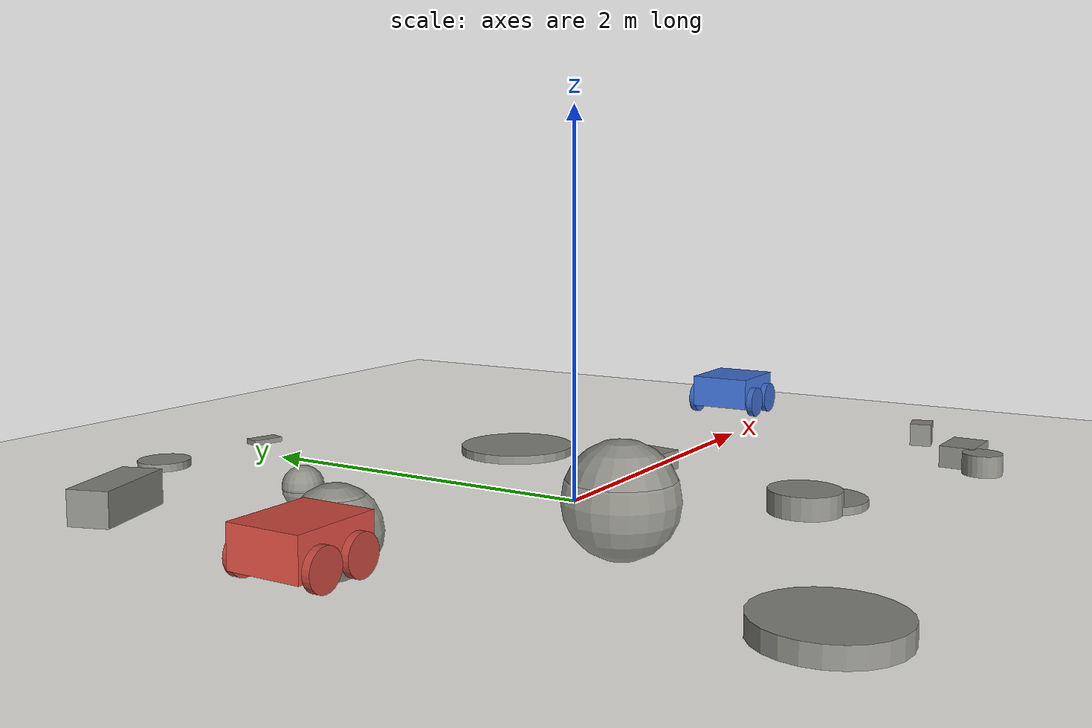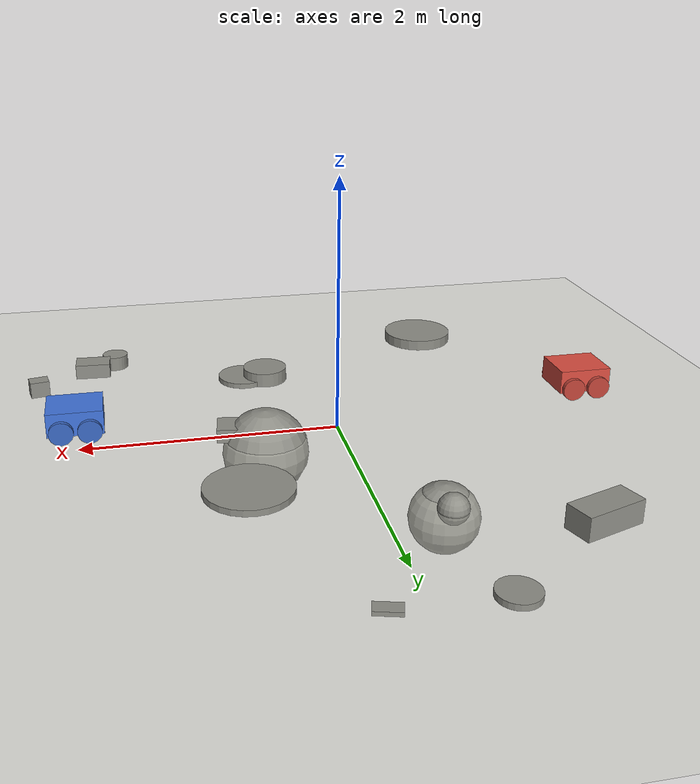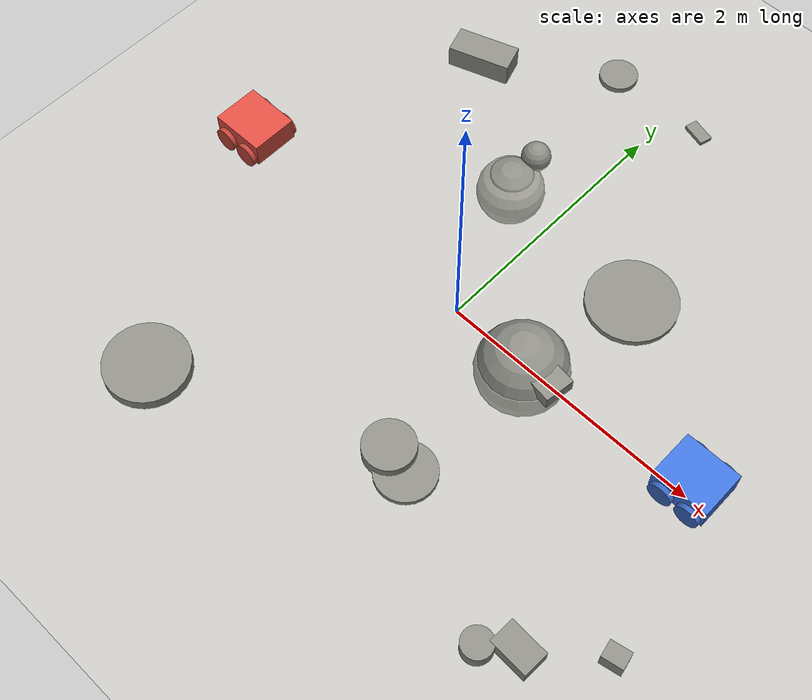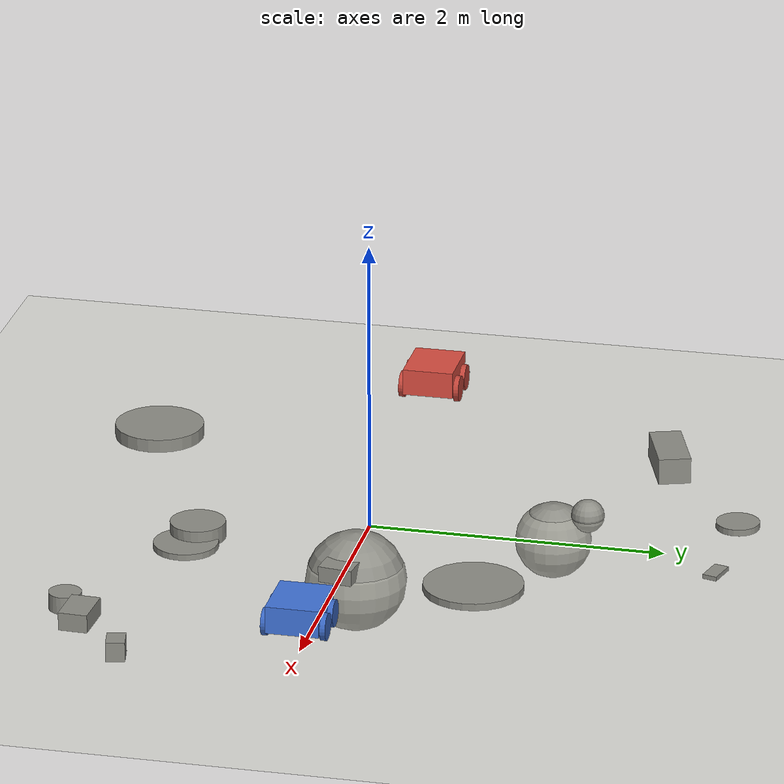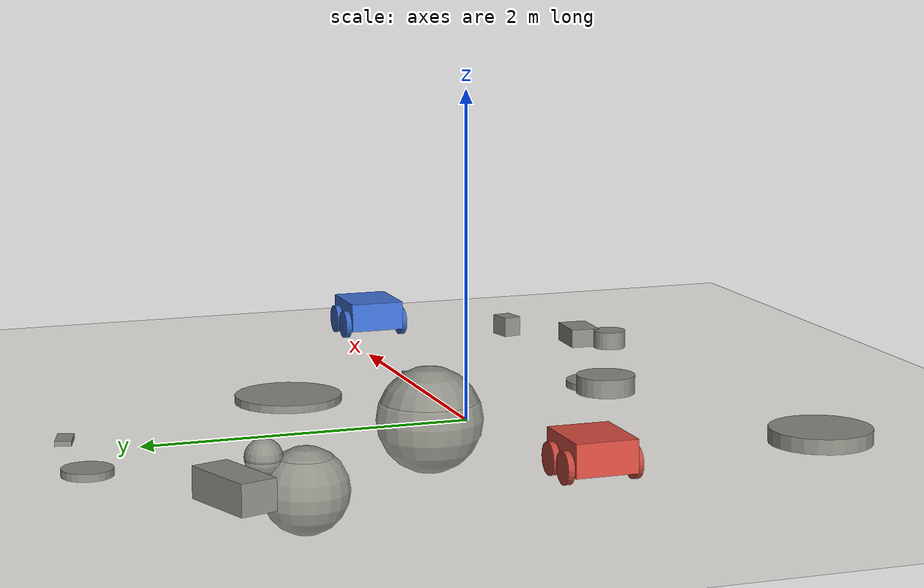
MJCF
<mujoco model="rabbitstew"><compiler angle="radian" autolimits="true" /><option timestep="0.005" gravity="0 0 -9.81" /><default><geom friction="1 0.005 0.0001" condim="3" solref="0.01 1" solimp="0.9 0.95 0.001" /><joint armature="0.005" /><motor ctrllimited="true" ctrlrange="-1 1" /></default><worldbody><geom name="floor" type="plane" size="0 0 1" rgba="0.85 0.85 0.8 1" /><light pos="0 0 4" dir="0 0 -1" diffuse="0.8 0.8 0.8" /><geom name="scenery0" pos="0.588138 -1.1156 0.0208862" quat="1 0 0 0" rgba="0.55 0.55 0.52 1" type="cylinder" size="0.218073 0.0208862" /><geom name="scenery1" pos="1.68602 -1.63908 0.0593242" quat="1 0 0 0" rgba="0.55 0.55 0.52 1" type="cylinder" size="0.109164 0.0593242" /><geom name="scenery2" pos="-1.19916 -1.76355 0.04495" quat="1 0 0 0" rgba="0.55 0.55 0.52 1" type="cylinder" size="0.306744 0.04495" /><geom name="scenery3" pos="2.33252 -1.12476 0.0663091" quat="0.995272 0 0 0.0971303" rgba="0.55 0.55 0.52 1" type="box" size="0.0780855 0.062265 0.0663091" /><geom name="scenery4" pos="-0.528399 2.4018 0.0219671" quat="1 0 0 0" rgba="0.55 0.55 0.52 1" type="cylinder" size="0.147247 0.0219671" /><geom name="scenery5" pos="-1.37742 1.78223 0.0903501" quat="0.986783 0 0 0.16205" rgba="0.55 0.55 0.52 1" type="box" size="0.24214 0.1102 0.0903501" /><geom name="scenery6" pos="-0.485057 1.38928 0.00450358" quat="1 0 0 0" rgba="0.55 0.55 0.52 1" type="sphere" size="0.113096" /><geom name="scenery7" pos="0.579411 0.0396035 -0.126374" quat="1 0 0 0" rgba="0.55 0.55 0.52 1" type="sphere" size="0.338738" /><geom name="scenery8" pos="1.88194 -1.49 0.0615057" quat="0.0204525 0 0 0.999791" rgba="0.55 0.55 0.52 1" type="box" size="0.146497 0.0972545 0.0615057" /><geom name="scenery9" pos="0.254495 2.38908 0.0151539" quat="0.13327 0 0 0.99108" rgba="0.55 0.55 0.52 1" type="box" size="0.0943341 0.0493801 0.0151539" /><geom name="scenery10" pos="0.405607 -1.07939 0.0582905" quat="1 0 0 0" rgba="0.55 0.55 0.52 1" type="cylinder" size="0.187037 0.0582905" /><geom name="scenery11" pos="-0.509484 1.15044 -0.204154" quat="1 0 0 0" rgba="0.55 0.55 0.52 1" type="sphere" size="0.258523" /><geom name="scenery12" pos="0.831178 0.886242 0.0241662" quat="1 0 0 0" rgba="0.55 0.55 0.52 1" type="cylinder" size="0.333017 0.0241662" /><geom name="scenery13" pos="0.811264 0.000437043 0.0544535" quat="0.0705477 0 0 0.997508" rgba="0.55 0.55 0.52 1" type="box" size="0.137848 0.11518 0.0544535" /><body name="r0_p0" pos="-2 2.44929e-16 0.29744" quat="1 -0 -0 -6.12323e-17"><freejoint name="r0_root" /><geom type="box" size="0.207951 0.175603 0.0924228" name="r0_g0" pos="0 0 0" mass="13.5" rgba="0.850 0.300 0.250 1" /><body name="r0_p1" pos="0.103976 0.175603 -0.0554537" quat="0.707107 0 0 0.707107"><joint name="r0_j1" type="hinge" axis="1 0 0" damping="2.7" /><geom type="cylinder" size="0.0900733 0.0180147" quat="0.707107 0 0.707107 0" name="r0_g1" pos="0.0180147 0 0" mass="0.459165" rgba="0.748 0.264 0.220 1" /></body><body name="r0_p2" pos="0.103976 -0.175603 -0.0554537" quat="0.707107 0 0 -0.707107"><joint name="r0_j2" type="hinge" axis="1 0 0" damping="2.7" /><geom type="cylinder" size="0.0900733 0.0180147" quat="0.707107 0 0.707107 0" name="r0_g2" pos="0.0180147 0 0" mass="0.459165" rgba="0.748 0.264 0.220 1" /></body><body name="r0_p3" pos="-0.103976 0.175603 -0.0554537" quat="0.707107 0 0 0.707107"><joint name="r0_j3" type="hinge" axis="1 0 0" damping="0.091833" /><geom type="cylinder" size="0.0900733 0.0180147" quat="0.707107 0 0.707107 0" name="r0_g3" pos="0.0180147 0 0" mass="0.459165" rgba="0.748 0.264 0.220 1" /></body><body name="r0_p4" pos="-0.103976 -0.175603 -0.0554537" quat="0.707107 0 0 -0.707107"><joint name="r0_j4" type="hinge" axis="1 0 0" damping="0.091833" /><geom type="cylinder" size="0.0900733 0.0180147" quat="0.707107 0 0.707107 0" name="r0_g4" pos="0.0180147 0 0" mass="0.459165" rgba="0.748 0.264 0.220 1" /></body></body><body name="r1_p0" pos="2 -4.89859e-16 0.29744" quat="6.12323e-17 0 0 1"><freejoint name="r1_root" /><geom type="box" size="0.207951 0.175603 0.0924228" name="r1_g0" pos="0 0 0" mass="13.5" rgba="0.250 0.450 0.850 1" /><body name="r1_p1" pos="0.103976 0.175603 -0.0554537" quat="0.707107 0 0 0.707107"><joint name="r1_j1" type="hinge" axis="1 0 0" damping="2.7" /><geom type="cylinder" size="0.0900733 0.0180147" quat="0.707107 0 0.707107 0" name="r1_g1" pos="0.0180147 0 0" mass="0.459165" rgba="0.220 0.396 0.748 1" /></body><body name="r1_p2" pos="0.103976 -0.175603 -0.0554537" quat="0.707107 0 0 -0.707107"><joint name="r1_j2" type="hinge" axis="1 0 0" damping="2.7" /><geom type="cylinder" size="0.0900733 0.0180147" quat="0.707107 0 0.707107 0" name="r1_g2" pos="0.0180147 0 0" mass="0.459165" rgba="0.220 0.396 0.748 1" /></body><body name="r1_p3" pos="-0.103976 0.175603 -0.0554537" quat="0.707107 0 0 0.707107"><joint name="r1_j3" type="hinge" axis="1 0 0" damping="0.091833" /><geom type="cylinder" size="0.0900733 0.0180147" quat="0.707107 0 0.707107 0" name="r1_g3" pos="0.0180147 0 0" mass="0.459165" rgba="0.220 0.396 0.748 1" /></body><body name="r1_p4" pos="-0.103976 -0.175603 -0.0554537" quat="0.707107 0 0 -0.707107"><joint name="r1_j4" type="hinge" axis="1 0 0" damping="0.091833" /><geom type="cylinder" size="0.0900733 0.0180147" quat="0.707107 0 0.707107 0" name="r1_g4" pos="0.0180147 0 0" mass="0.459165" rgba="0.220 0.396 0.748 1" /></body></body></worldbody><actuator><motor name="r0_a1_0" joint="r0_j1" gear="54" /><motor name="r0_a2_0" joint="r0_j2" gear="54" /><motor name="r1_a1_0" joint="r1_j1" gear="54" /><motor name="r1_a2_0" joint="r1_j2" gear="54" /></actuator></mujoco>
